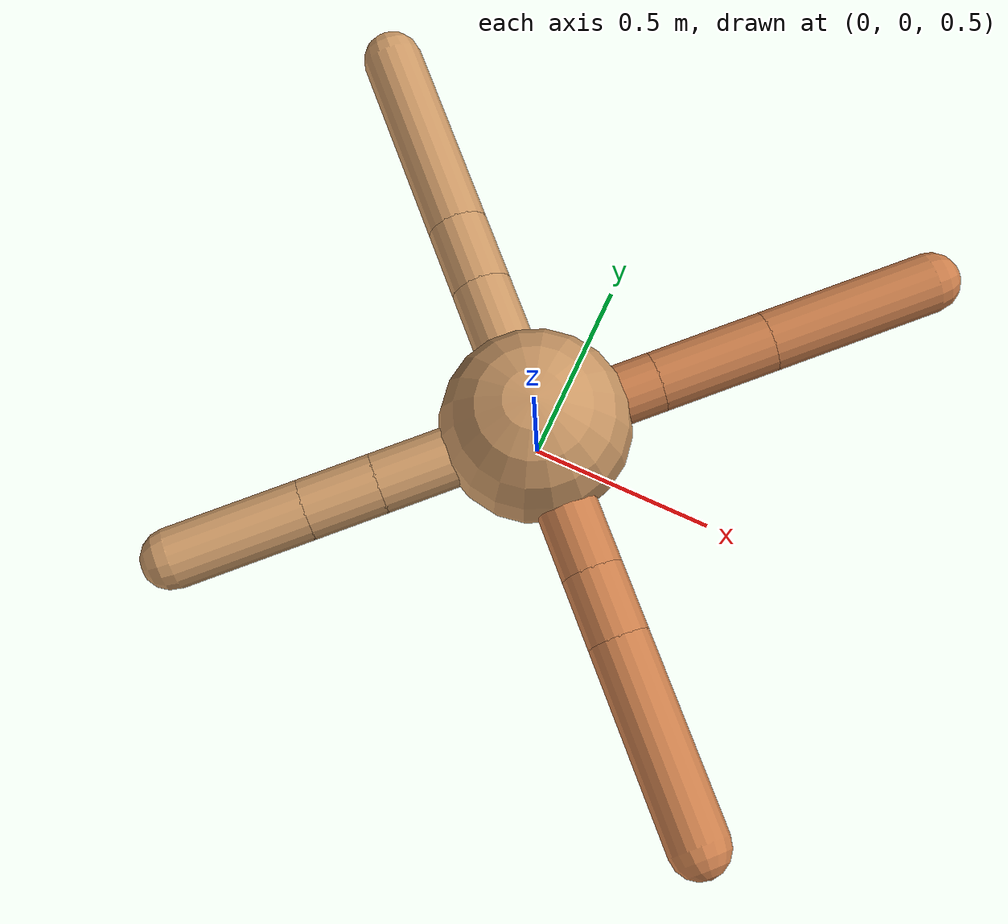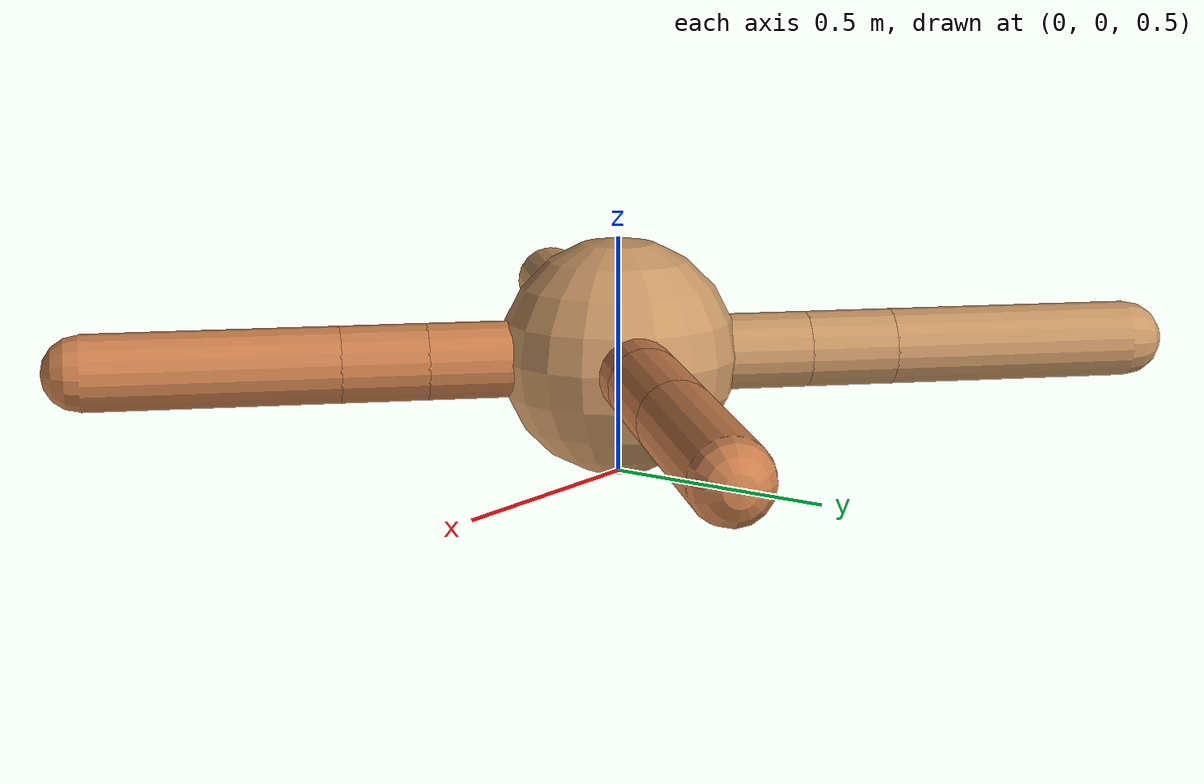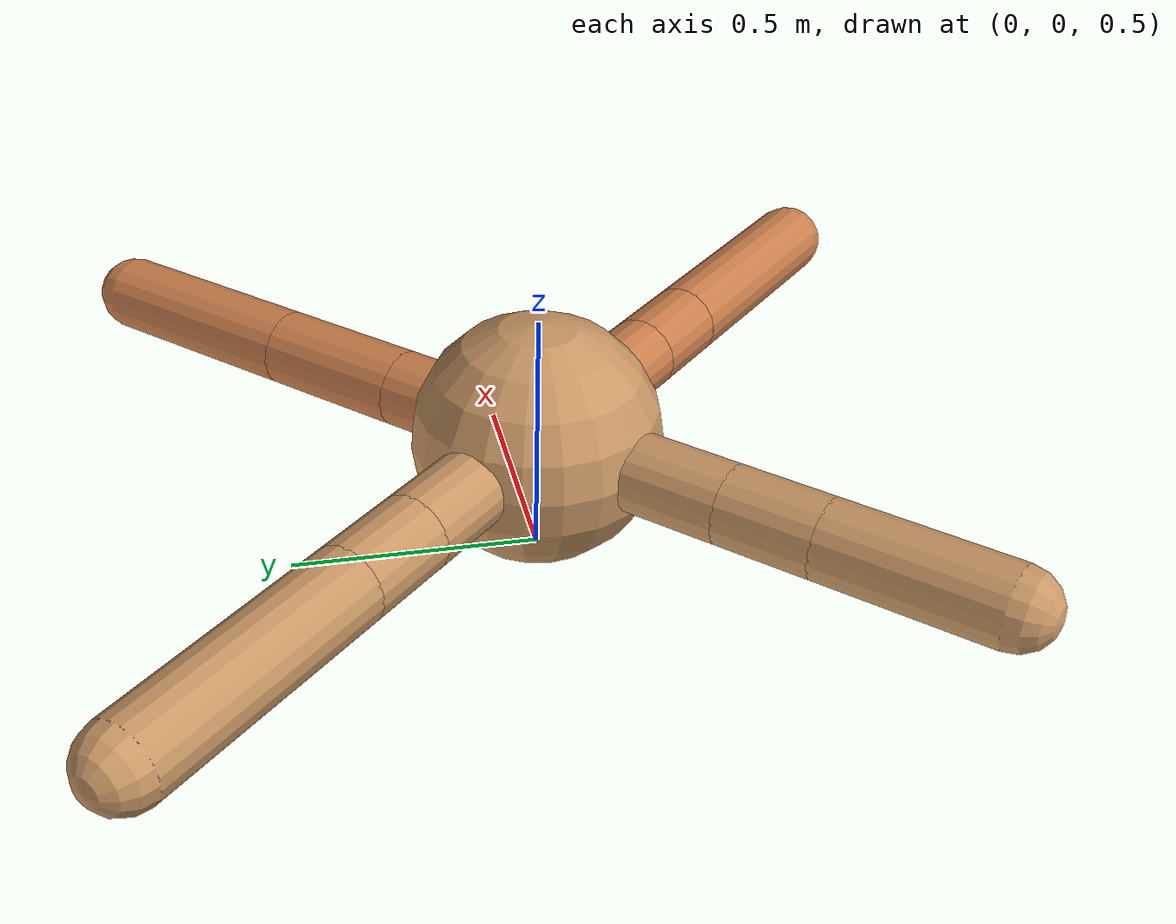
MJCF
<mujoco model="ant">
  <compiler angle="degree" coordinate="local" inertiafromgeom="true" />
  <option integrator="RK4" timestep="0.01" />
  <custom>
    <numeric data="0.0 0.0 0.55 1.0 0.0 0.0 0.0 0.0 1.0 0.0 -1.0 0.0 -1.0 0.0 1.0" name="init_qpos" />
  </custom>
  <default>
    <joint armature="1" damping="1" limited="true" />
    <geom conaffinity="0" condim="3" density="5.0" friction="1.5 0.1 0.1" margin="0.01" rgba="0.8 0.6 0.4 1" />
  </default>
  <worldbody>
    <body name="torso" pos="0 0 0.75">
      <geom name="torso_geom" pos="0 0 0" size="0.25" type="sphere" />

      <body name="front_left_leg" pos="0 0 0">
        <geom fromto="0.0 0.0 0.0 0.2349277696928312 0.2349277696928312 0.0" name="aux_1_geom" size="0.08" type="capsule" rgba=".8 .5 .3 1" />
        <body name="aux_1" pos="0.2349277696928312 0.2349277696928312 0.0">
          <joint axis="0 0 1" name="hip_1" pos="0.0 0.0 0.0" range="-40 40" type="hinge" />
          <geom fromto="0.0 0.0 0.0 0.21906955648038084 0.21906955648038084 0.0" name="left_leg_geom" size="0.08" type="capsule" rgba=".8 .5 .3 1" />
          <body pos="0.21906955648038084 0.21906955648038084 0.0" name="front_left_foot">
            <joint axis="-1 1 0" name="ankle_1" pos="0.0 0.0 0.0" range="30 100" type="hinge" />
            <geom fromto="0.0 0.0 0.0 0.3273851818873903 0.3273851818873903 0.0" name="left_ankle_geom" size="0.08" type="capsule" rgba=".8 .5 .3 1" />
          </body>
        </body>
      </body>
      <body name="front_right_leg" pos="0 0 0">
        <geom fromto="0.0 0.0 0.0 -0.2851142543730693 0.2851142543730693 0.0" name="aux_2_geom" size="0.08" type="capsule" />
        <body name="aux_2" pos="-0.2851142543730693 0.2851142543730693 0.0">
          <joint axis="0 0 1" name="hip_2" pos="0.0 0.0 0.0" range="-40 40" type="hinge" />
          <geom fromto="0.0 0.0 0.0 -0.1306340762419621 0.1306340762419621 0.0" name="right_leg_geom" size="0.08" type="capsule" />
          <body pos="-0.1306340762419621 0.1306340762419621 0.0" name="front_right_foot">
            <joint axis="1 1 0" name="ankle_2" pos="0.0 0.0 0.0" range="-100 -30" type="hinge" />
            <geom fromto="0.0 0.0 0.0 -0.3715600005451101 0.3715600005451101 0.0" name="right_ankle_geom" size="0.08" type="capsule" />
          </body>
        </body>
      </body>
      <body name="left_back_leg" pos="0 0 0">
        <geom fromto="0.0 0.0 0.0 -0.2998548218140431 -0.2998548218140431 0.0" name="aux_3_geom" size="0.08" type="capsule" />
        <body name="aux_3" pos="-0.2998548218140431 -0.2998548218140431 0.0">
          <joint axis="0 0 1" name="hip_3" pos="0.0 0.0 0.0" range="-40 40" type="hinge" />
          <geom fromto="0.0 0.0 0.0 -0.13574769647595117 -0.13574769647595117 0.0" name="back_leg_geom" size="0.08" type="capsule" />
          <body pos="-0.13574769647595117 -0.13574769647595117 0.0" name="left_back_foot">
            <joint axis="-1 1 0" name="ankle_3" pos="0.0 0.0 0.0" range="-100 -30" type="hinge" />
            <geom fromto="0.0 0.0 0.0 -0.24719728003938302 -0.24719728003938302 0.0" name="third_ankle_geom" size="0.08" type="capsule" />
          </body>
        </body>
      </body>
      <body name="right_back_leg" pos="0 0 0">
        <geom fromto="0.0 0.0 0.0 0.2852077268408499 -0.2852077268408499 0.0" name="aux_4_geom" size="0.08" type="capsule" rgba=".8 .5 .3 1" />
        <body name="aux_4" pos="0.2852077268408499 -0.2852077268408499 0.0">
          <joint axis="0 0 1" name="hip_4" pos="0.0 0.0 0.0" range="-40 40" type="hinge" />
          <geom fromto="0.0 0.0 0.0 0.12736255845204864 -0.12736255845204864 0.0" name="rightback_leg_geom" size="0.08" type="capsule" rgba=".8 .5 .3 1" />
          <body pos="0.12736255845204864 -0.12736255845204864 0.0" name="right_back_foot">
            <joint axis="1 1 0" name="ankle_4" pos="0.0 0.0 0.0" range="30 100" type="hinge" />
            <geom fromto="0.0 0.0 0.0 0.3713861112478369 -0.3713861112478369 0.0" name="fourth_ankle_geom" size="0.08" type="capsule" rgba=".8 .5 .3 1" />
          </body>
        </body>
      </body>
    </body>
  </worldbody>
  <actuator>
    <motor ctrllimited="true" ctrlrange="-1.0 1.0" joint="hip_4" gear="150" />
    <motor ctrllimited="true" ctrlrange="-1.0 1.0" joint="ankle_4" gear="150" />
    <motor ctrllimited="true" ctrlrange="-1.0 1.0" joint="hip_1" gear="150" />
    <motor ctrllimited="true" ctrlrange="-1.0 1.0" joint="ankle_1" gear="150" />
    <motor ctrllimited="true" ctrlrange="-1.0 1.0" joint="hip_2" gear="150" />
    <motor ctrllimited="true" ctrlrange="-1.0 1.0" joint="ankle_2" gear="150" />
    <motor ctrllimited="true" ctrlrange="-1.0 1.0" joint="hip_3" gear="150" />
    <motor ctrllimited="true" ctrlrange="-1.0 1.0" joint="ankle_3" gear="150" />
  </actuator>
</mujoco>
